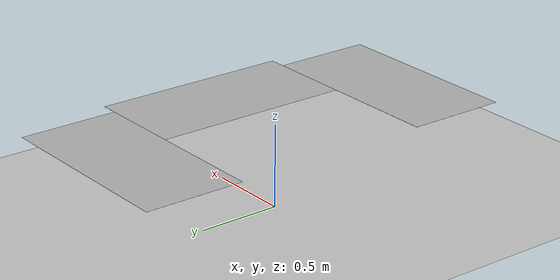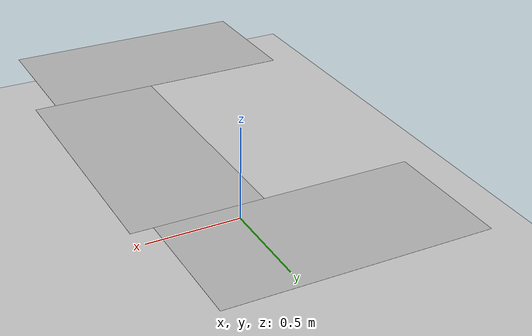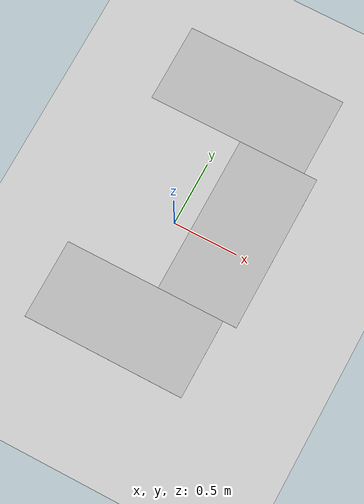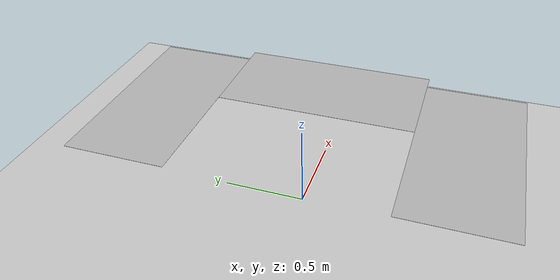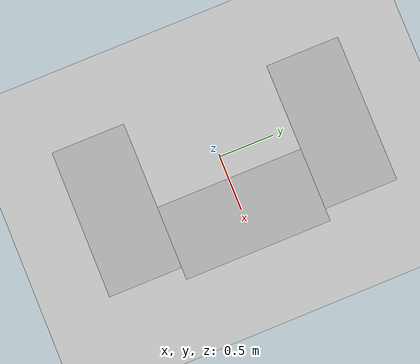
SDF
<?xml version="1.0" ?>
<sdf version="1.5">
  <world name="default">
    <include>
      <uri>model://ground_plane</uri>
    </include>

    <include>
      <uri>model://sun</uri>
    </include>

    <model name="box">
      <pose>0.5 0 0.5 0 0 0</pose>
      <link name="link">
        <collision name="collision">
          <geometry>
            <box>
              <size>0.6 1.2 0.0005</size>
            </box>
          </geometry>
        </collision>
        <visual name="visual">
          <geometry>
            <box>
              <size>0.6 1.2 0.0005</size>
            </box>
          </geometry>
          <material>
            <script>Gazebo/WoodPallet</script>
          </material>
        </visual>
      </link>
    </model>

    <model name="box">
      <pose>0.1 0.9 0.5 0 0 0</pose>
      <link name="link">
        <collision name="collision">
          <geometry>
            <box>
              <size>1.2 0.6 0.0005</size>
            </box>
          </geometry>
        </collision>
        <visual name="visual">
          <geometry>
            <box>
              <size>1.2 0.6 0.0005</size>
            </box>
          </geometry>
          <material>
            <script>Gazebo/WoodPallet</script>
          </material>
        </visual>
      </link>
    </model>

    <model name="box">
      <pose>0.1 -0.9 0.5 0 0 0</pose>
      <link name="link">
        <collision name="collision">
          <geometry>
            <box>
              <size>1.2 0.6 0.0005</size>
            </box>
          </geometry>
        </collision>
        <visual name="visual">
          <geometry>
            <box>
              <size>1.2 0.6 0.0005</size>
            </box>
          </geometry>
          <material>
            <script>Gazebo/WoodPallet</script>
          </material>
        </visual>
      </link>
    </model>

  </world>
</sdf>
